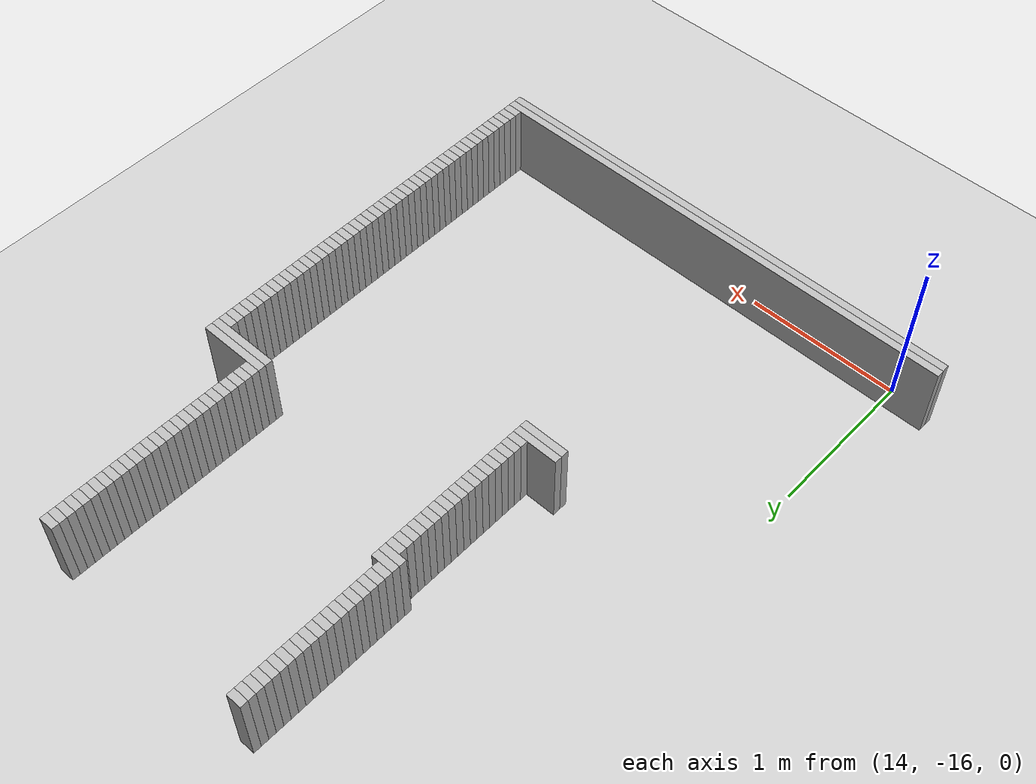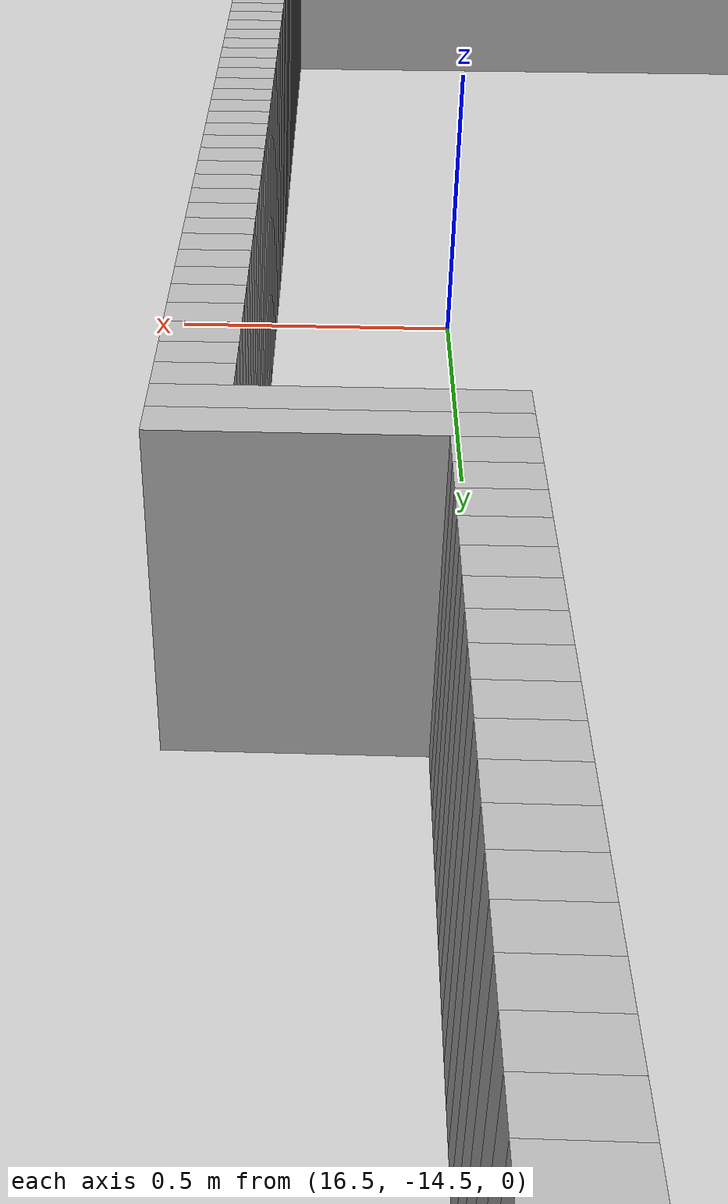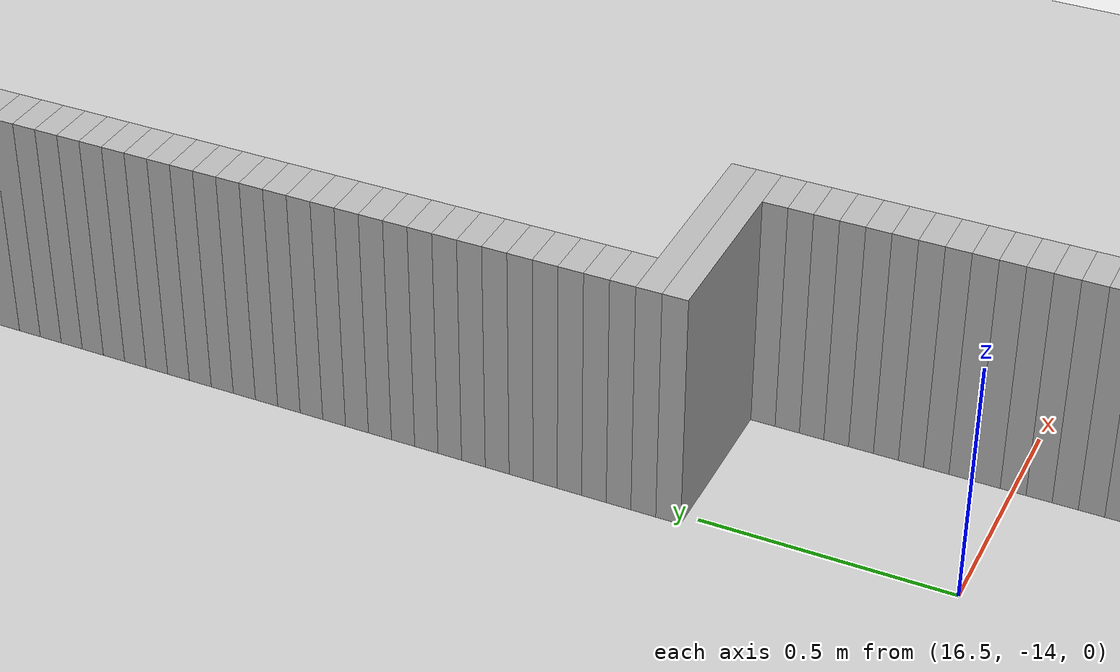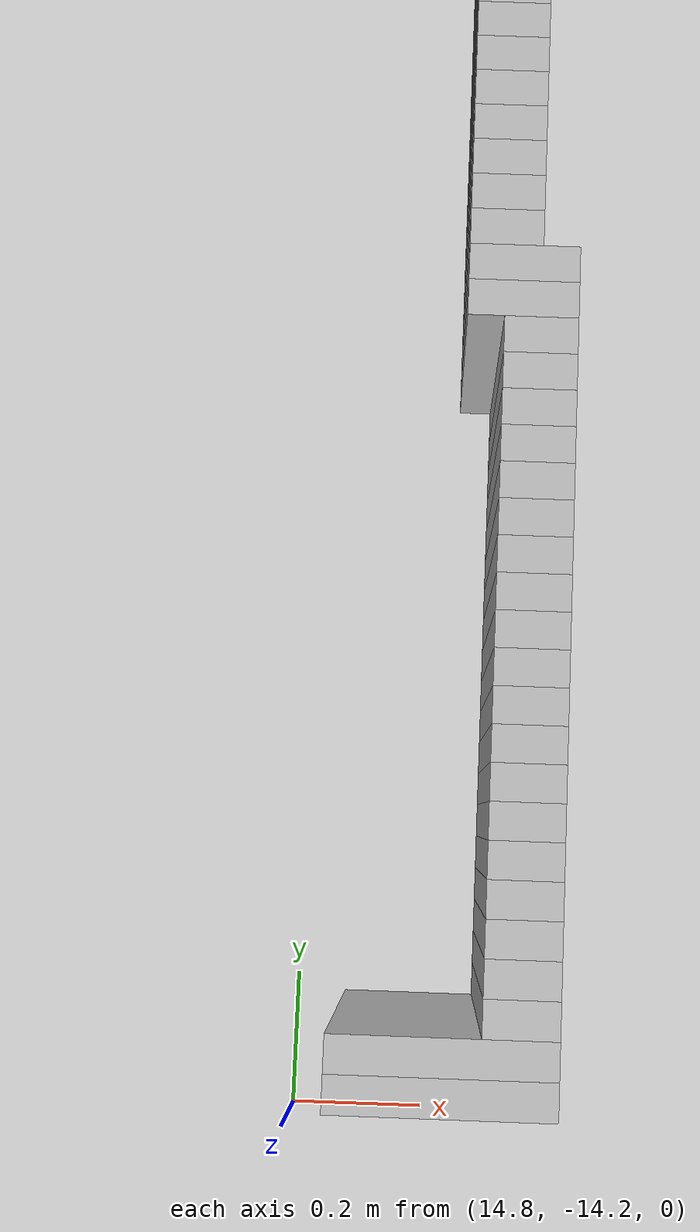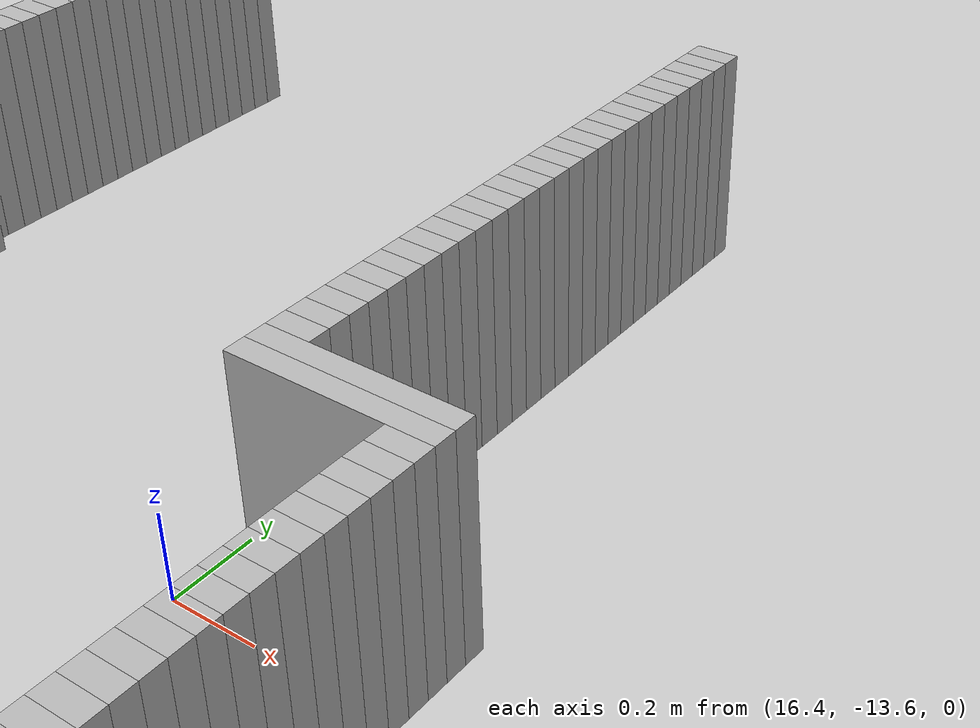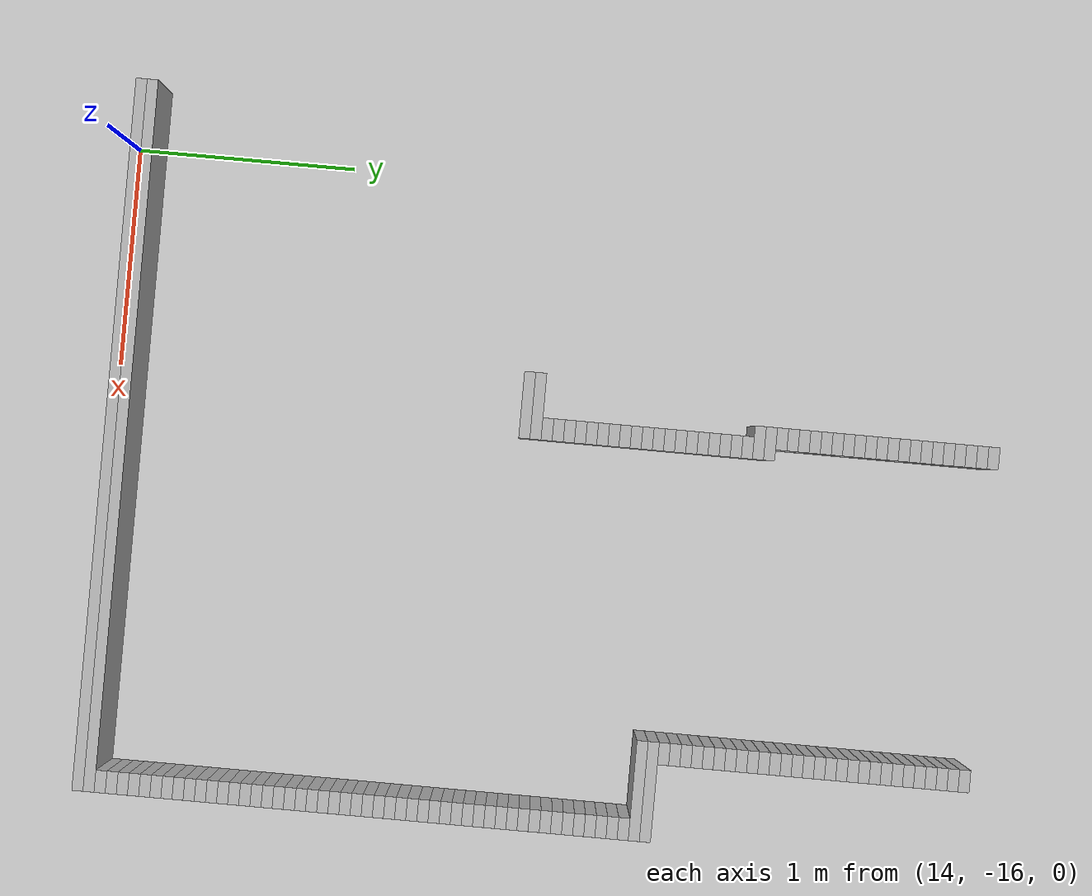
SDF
<sdf version="1.6">
 <world name="optimized_map_world">
  <include><uri>model://sun</uri></include>
  <include><uri>model://ground_plane</uri></include>
  <model name="obstacle_992">
   <static>true</static>
   <link name="link">
    <collision name="collision"><geometry><box><size>0.1 0.05 0.5</size></box></geometry></collision>
    <visual name="visual"><geometry><box><size>0.1 0.05 0.5</size></box></geometry></visual>
   </link>
   <pose>15.075000000000003 -12.0 0.25 0 0 0</pose>
  </model>
  <model name="obstacle_993">
   <static>true</static>
   <link name="link">
    <collision name="collision"><geometry><box><size>0.1 0.05 0.5</size></box></geometry></collision>
    <visual name="visual"><geometry><box><size>0.1 0.05 0.5</size></box></geometry></visual>
   </link>
   <pose>16.525000000000002 -12.0 0.25 0 0 0</pose>
  </model>
  <model name="obstacle_996">
   <static>true</static>
   <link name="link">
    <collision name="collision"><geometry><box><size>0.1 0.05 0.5</size></box></geometry></collision>
    <visual name="visual"><geometry><box><size>0.1 0.05 0.5</size></box></geometry></visual>
   </link>
   <pose>15.075000000000003 -12.05 0.25 0 0 0</pose>
  </model>
  <model name="obstacle_997">
   <static>true</static>
   <link name="link">
    <collision name="collision"><geometry><box><size>0.1 0.05 0.5</size></box></geometry></collision>
    <visual name="visual"><geometry><box><size>0.1 0.05 0.5</size></box></geometry></visual>
   </link>
   <pose>16.525000000000002 -12.05 0.25 0 0 0</pose>
  </model>
  <model name="obstacle_1000">
   <static>true</static>
   <link name="link">
    <collision name="collision"><geometry><box><size>0.1 0.05 0.5</size></box></geometry></collision>
    <visual name="visual"><geometry><box><size>0.1 0.05 0.5</size></box></geometry></visual>
   </link>
   <pose>15.075000000000003 -12.1 0.25 0 0 0</pose>
  </model>
  <model name="obstacle_1001">
   <static>true</static>
   <link name="link">
    <collision name="collision"><geometry><box><size>0.1 0.05 0.5</size></box></geometry></collision>
    <visual name="visual"><geometry><box><size>0.1 0.05 0.5</size></box></geometry></visual>
   </link>
   <pose>16.525000000000002 -12.1 0.25 0 0 0</pose>
  </model>
  <model name="obstacle_1004">
   <static>true</static>
   <link name="link">
    <collision name="collision"><geometry><box><size>0.1 0.05 0.5</size></box></geometry></collision>
    <visual name="visual"><geometry><box><size>0.1 0.05 0.5</size></box></geometry></visual>
   </link>
   <pose>15.075000000000003 -12.15 0.25 0 0 0</pose>
  </model>
  <model name="obstacle_1005">
   <static>true</static>
   <link name="link">
    <collision name="collision"><geometry><box><size>0.1 0.05 0.5</size></box></geometry></collision>
    <visual name="visual"><geometry><box><size>0.1 0.05 0.5</size></box></geometry></visual>
   </link>
   <pose>16.525000000000002 -12.15 0.25 0 0 0</pose>
  </model>
  <model name="obstacle_1008">
   <static>true</static>
   <link name="link">
    <collision name="collision"><geometry><box><size>0.1 0.05 0.5</size></box></geometry></collision>
    <visual name="visual"><geometry><box><size>0.1 0.05 0.5</size></box></geometry></visual>
   </link>
   <pose>15.075000000000003 -12.200000000000001 0.25 0 0 0</pose>
  </model>
  <model name="obstacle_1009">
   <static>true</static>
   <link name="link">
    <collision name="collision"><geometry><box><size>0.1 0.05 0.5</size></box></geometry></collision>
    <visual name="visual"><geometry><box><size>0.1 0.05 0.5</size></box></geometry></visual>
   </link>
   <pose>16.525000000000002 -12.200000000000001 0.25 0 0 0</pose>
  </model>
  <model name="obstacle_1012">
   <static>true</static>
   <link name="link">
    <collision name="collision"><geometry><box><size>0.1 0.05 0.5</size></box></geometry></collision>
    <visual name="visual"><geometry><box><size>0.1 0.05 0.5</size></box></geometry></visual>
   </link>
   <pose>15.075000000000003 -12.25 0.25 0 0 0</pose>
  </model>
  <model name="obstacle_1013">
   <static>true</static>
   <link name="link">
    <collision name="collision"><geometry><box><size>0.1 0.05 0.5</size></box></geometry></collision>
    <visual name="visual"><geometry><box><size>0.1 0.05 0.5</size></box></geometry></visual>
   </link>
   <pose>16.525000000000002 -12.25 0.25 0 0 0</pose>
  </model>
  <model name="obstacle_1016">
   <static>true</static>
   <link name="link">
    <collision name="collision"><geometry><box><size>0.1 0.05 0.5</size></box></geometry></collision>
    <visual name="visual"><geometry><box><size>0.1 0.05 0.5</size></box></geometry></visual>
   </link>
   <pose>15.075000000000003 -12.3 0.25 0 0 0</pose>
  </model>
  <model name="obstacle_1017">
   <static>true</static>
   <link name="link">
    <collision name="collision"><geometry><box><size>0.1 0.05 0.5</size></box></geometry></collision>
    <visual name="visual"><geometry><box><size>0.1 0.05 0.5</size></box></geometry></visual>
   </link>
   <pose>16.525000000000002 -12.3 0.25 0 0 0</pose>
  </model>
  <model name="obstacle_1020">
   <static>true</static>
   <link name="link">
    <collision name="collision"><geometry><box><size>0.1 0.05 0.5</size></box></geometry></collision>
    <visual name="visual"><geometry><box><size>0.1 0.05 0.5</size></box></geometry></visual>
   </link>
   <pose>15.075000000000003 -12.350000000000001 0.25 0 0 0</pose>
  </model>
  <model name="obstacle_1021">
   <static>true</static>
   <link name="link">
    <collision name="collision"><geometry><box><size>0.1 0.05 0.5</size></box></geometry></collision>
    <visual name="visual"><geometry><box><size>0.1 0.05 0.5</size></box></geometry></visual>
   </link>
   <pose>16.525000000000002 -12.350000000000001 0.25 0 0 0</pose>
  </model>
  <model name="obstacle_1024">
   <static>true</static>
   <link name="link">
    <collision name="collision"><geometry><box><size>0.1 0.05 0.5</size></box></geometry></collision>
    <visual name="visual"><geometry><box><size>0.1 0.05 0.5</size></box></geometry></visual>
   </link>
   <pose>15.075000000000003 -12.4 0.25 0 0 0</pose>
  </model>
  <model name="obstacle_1025">
   <static>true</static>
   <link name="link">
    <collision name="collision"><geometry><box><size>0.1 0.05 0.5</size></box></geometry></collision>
    <visual name="visual"><geometry><box><size>0.1 0.05 0.5</size></box></geometry></visual>
   </link>
   <pose>16.525000000000002 -12.4 0.25 0 0 0</pose>
  </model>
  <model name="obstacle_1028">
   <static>true</static>
   <link name="link">
    <collision name="collision"><geometry><box><size>0.1 0.05 0.5</size></box></geometry></collision>
    <visual name="visual"><geometry><box><size>0.1 0.05 0.5</size></box></geometry></visual>
   </link>
   <pose>15.075000000000003 -12.45 0.25 0 0 0</pose>
  </model>
  <model name="obstacle_1029">
   <static>true</static>
   <link name="link">
    <collision name="collision"><geometry><box><size>0.1 0.05 0.5</size></box></geometry></collision>
    <visual name="visual"><geometry><box><size>0.1 0.05 0.5</size></box></geometry></visual>
   </link>
   <pose>16.525000000000002 -12.45 0.25 0 0 0</pose>
  </model>
  <model name="obstacle_1032">
   <static>true</static>
   <link name="link">
    <collision name="collision"><geometry><box><size>0.1 0.05 0.5</size></box></geometry></collision>
    <visual name="visual"><geometry><box><size>0.1 0.05 0.5</size></box></geometry></visual>
   </link>
   <pose>15.075000000000003 -12.5 0.25 0 0 0</pose>
  </model>
  <model name="obstacle_1033">
   <static>true</static>
   <link name="link">
    <collision name="collision"><geometry><box><size>0.1 0.05 0.5</size></box></geometry></collision>
    <visual name="visual"><geometry><box><size>0.1 0.05 0.5</size></box></geometry></visual>
   </link>
   <pose>16.525000000000002 -12.5 0.25 0 0 0</pose>
  </model>
  <model name="obstacle_1036">
   <static>true</static>
   <link name="link">
    <collision name="collision"><geometry><box><size>0.1 0.05 0.5</size></box></geometry></collision>
    <visual name="visual"><geometry><box><size>0.1 0.05 0.5</size></box></geometry></visual>
   </link>
   <pose>15.075000000000003 -12.55 0.25 0 0 0</pose>
  </model>
  <model name="obstacle_1037">
   <static>true</static>
   <link name="link">
    <collision name="collision"><geometry><box><size>0.1 0.05 0.5</size></box></geometry></collision>
    <visual name="visual"><geometry><box><size>0.1 0.05 0.5</size></box></geometry></visual>
   </link>
   <pose>16.525000000000002 -12.55 0.25 0 0 0</pose>
  </model>
  <model name="obstacle_1040">
   <static>true</static>
   <link name="link">
    <collision name="collision"><geometry><box><size>0.1 0.05 0.5</size></box></geometry></collision>
    <visual name="visual"><geometry><box><size>0.1 0.05 0.5</size></box></geometry></visual>
   </link>
   <pose>15.075000000000003 -12.600000000000001 0.25 0 0 0</pose>
  </model>
  <model name="obstacle_1041">
   <static>true</static>
   <link name="link">
    <collision name="collision"><geometry><box><size>0.1 0.05 0.5</size></box></geometry></collision>
    <visual name="visual"><geometry><box><size>0.1 0.05 0.5</size></box></geometry></visual>
   </link>
   <pose>16.525000000000002 -12.600000000000001 0.25 0 0 0</pose>
  </model>
  <model name="obstacle_1044">
   <static>true</static>
   <link name="link">
    <collision name="collision"><geometry><box><size>0.1 0.05 0.5</size></box></geometry></collision>
    <visual name="visual"><geometry><box><size>0.1 0.05 0.5</size></box></geometry></visual>
   </link>
   <pose>15.075000000000003 -12.65 0.25 0 0 0</pose>
  </model>
  <model name="obstacle_1045">
   <static>true</static>
   <link name="link">
    <collision name="collision"><geometry><box><size>0.1 0.05 0.5</size></box></geometry></collision>
    <visual name="visual"><geometry><box><size>0.1 0.05 0.5</size></box></geometry></visual>
   </link>
   <pose>16.525000000000002 -12.65 0.25 0 0 0</pose>
  </model>
  <model name="obstacle_1048">
   <static>true</static>
   <link name="link">
    <collision name="collision"><geometry><box><size>0.1 0.05 0.5</size></box></geometry></collision>
    <visual name="visual"><geometry><box><size>0.1 0.05 0.5</size></box></geometry></visual>
   </link>
   <pose>15.075000000000003 -12.7 0.25 0 0 0</pose>
  </model>
  <model name="obstacle_1049">
   <static>true</static>
   <link name="link">
    <collision name="collision"><geometry><box><size>0.1 0.05 0.5</size></box></geometry></collision>
    <visual name="visual"><geometry><box><size>0.1 0.05 0.5</size></box></geometry></visual>
   </link>
   <pose>16.525000000000002 -12.7 0.25 0 0 0</pose>
  </model>
  <model name="obstacle_1052">
   <static>true</static>
   <link name="link">
    <collision name="collision"><geometry><box><size>0.1 0.05 0.5</size></box></geometry></collision>
    <visual name="visual"><geometry><box><size>0.1 0.05 0.5</size></box></geometry></visual>
   </link>
   <pose>15.075000000000003 -12.75 0.25 0 0 0</pose>
  </model>
  <model name="obstacle_1053">
   <static>true</static>
   <link name="link">
    <collision name="collision"><geometry><box><size>0.1 0.05 0.5</size></box></geometry></collision>
    <visual name="visual"><geometry><box><size>0.1 0.05 0.5</size></box></geometry></visual>
   </link>
   <pose>16.525000000000002 -12.75 0.25 0 0 0</pose>
  </model>
  <model name="obstacle_1056">
   <static>true</static>
   <link name="link">
    <collision name="collision"><geometry><box><size>0.1 0.05 0.5</size></box></geometry></collision>
    <visual name="visual"><geometry><box><size>0.1 0.05 0.5</size></box></geometry></visual>
   </link>
   <pose>15.075000000000003 -12.8 0.25 0 0 0</pose>
  </model>
  <model name="obstacle_1057">
   <static>true</static>
   <link name="link">
    <collision name="collision"><geometry><box><size>0.1 0.05 0.5</size></box></geometry></collision>
    <visual name="visual"><geometry><box><size>0.1 0.05 0.5</size></box></geometry></visual>
   </link>
   <pose>16.525000000000002 -12.8 0.25 0 0 0</pose>
  </model>
  <model name="obstacle_1060">
   <static>true</static>
   <link name="link">
    <collision name="collision"><geometry><box><size>0.1 0.05 0.5</size></box></geometry></collision>
    <visual name="visual"><geometry><box><size>0.1 0.05 0.5</size></box></geometry></visual>
   </link>
   <pose>15.075000000000003 -12.850000000000001 0.25 0 0 0</pose>
  </model>
  <model name="obstacle_1061">
   <static>true</static>
   <link name="link">
    <collision name="collision"><geometry><box><size>0.1 0.05 0.5</size></box></geometry></collision>
    <visual name="visual"><geometry><box><size>0.1 0.05 0.5</size></box></geometry></visual>
   </link>
   <pose>16.525000000000002 -12.850000000000001 0.25 0 0 0</pose>
  </model>
  <model name="obstacle_1064">
   <static>true</static>
   <link name="link">
    <collision name="collision"><geometry><box><size>0.1 0.05 0.5</size></box></geometry></collision>
    <visual name="visual"><geometry><box><size>0.1 0.05 0.5</size></box></geometry></visual>
   </link>
   <pose>15.075000000000003 -12.9 0.25 0 0 0</pose>
  </model>
  <model name="obstacle_1065">
   <static>true</static>
   <link name="link">
    <collision name="collision"><geometry><box><size>0.1 0.05 0.5</size></box></geometry></collision>
    <visual name="visual"><geometry><box><size>0.1 0.05 0.5</size></box></geometry></visual>
   </link>
   <pose>16.525000000000002 -12.9 0.25 0 0 0</pose>
  </model>
  <model name="obstacle_1068">
   <static>true</static>
   <link name="link">
    <collision name="collision"><geometry><box><size>0.1 0.05 0.5</size></box></geometry></collision>
    <visual name="visual"><geometry><box><size>0.1 0.05 0.5</size></box></geometry></visual>
   </link>
   <pose>15.075000000000003 -12.95 0.25 0 0 0</pose>
  </model>
  <model name="obstacle_1069">
   <static>true</static>
   <link name="link">
    <collision name="collision"><geometry><box><size>0.1 0.05 0.5</size></box></geometry></collision>
    <visual name="visual"><geometry><box><size>0.1 0.05 0.5</size></box></geometry></visual>
   </link>
   <pose>16.525000000000002 -12.95 0.25 0 0 0</pose>
  </model>
  <model name="obstacle_1072">
   <static>true</static>
   <link name="link">
    <collision name="collision">
     <geometry><box><size>0.15000000000000002 0.05 0.5</size></box></geometry>
    </collision>
    <visual name="visual"><geometry><box><size>0.15000000000000002 0.05 0.5</size></box></geometry></visual>
   </link>
   <pose>15.100000000000001 -13.0 0.25 0 0 0</pose>
  </model>
  <model name="obstacle_1073">
   <static>true</static>
   <link name="link">
    <collision name="collision"><geometry><box><size>0.1 0.05 0.5</size></box></geometry></collision>
    <visual name="visual"><geometry><box><size>0.1 0.05 0.5</size></box></geometry></visual>
   </link>
   <pose>16.525000000000002 -13.0 0.25 0 0 0</pose>
  </model>
  <model name="obstacle_1076">
   <static>true</static>
   <link name="link">
    <collision name="collision">
     <geometry><box><size>0.15000000000000002 0.05 0.5</size></box></geometry>
    </collision>
    <visual name="visual"><geometry><box><size>0.15000000000000002 0.05 0.5</size></box></geometry></visual>
   </link>
   <pose>15.100000000000001 -13.05 0.25 0 0 0</pose>
  </model>
  <model name="obstacle_1077">
   <static>true</static>
   <link name="link">
    <collision name="collision"><geometry><box><size>0.1 0.05 0.5</size></box></geometry></collision>
    <visual name="visual"><geometry><box><size>0.1 0.05 0.5</size></box></geometry></visual>
   </link>
   <pose>16.525000000000002 -13.05 0.25 0 0 0</pose>
  </model>
  <model name="obstacle_1080">
   <static>true</static>
   <link name="link">
    <collision name="collision"><geometry><box><size>0.1 0.05 0.5</size></box></geometry></collision>
    <visual name="visual"><geometry><box><size>0.1 0.05 0.5</size></box></geometry></visual>
   </link>
   <pose>15.125000000000004 -13.100000000000001 0.25 0 0 0</pose>
  </model>
  <model name="obstacle_1081">
   <static>true</static>
   <link name="link">
    <collision name="collision"><geometry><box><size>0.1 0.05 0.5</size></box></geometry></collision>
    <visual name="visual"><geometry><box><size>0.1 0.05 0.5</size></box></geometry></visual>
   </link>
   <pose>16.525000000000002 -13.100000000000001 0.25 0 0 0</pose>
  </model>
  <model name="obstacle_1084">
   <static>true</static>
   <link name="link">
    <collision name="collision"><geometry><box><size>0.1 0.05 0.5</size></box></geometry></collision>
    <visual name="visual"><geometry><box><size>0.1 0.05 0.5</size></box></geometry></visual>
   </link>
   <pose>15.125000000000004 -13.15 0.25 0 0 0</pose>
  </model>
  <model name="obstacle_1085">
   <static>true</static>
   <link name="link">
    <collision name="collision"><geometry><box><size>0.1 0.05 0.5</size></box></geometry></collision>
    <visual name="visual"><geometry><box><size>0.1 0.05 0.5</size></box></geometry></visual>
   </link>
   <pose>16.525000000000002 -13.15 0.25 0 0 0</pose>
  </model>
  <model name="obstacle_1089">
   <static>true</static>
   <link name="link">
    <collision name="collision"><geometry><box><size>0.1 0.05 0.5</size></box></geometry></collision>
    <visual name="visual"><geometry><box><size>0.1 0.05 0.5</size></box></geometry></visual>
   </link>
   <pose>15.125000000000004 -13.2 0.25 0 0 0</pose>
  </model>
  <model name="obstacle_1090">
   <static>true</static>
   <link name="link">
    <collision name="collision"><geometry><box><size>0.1 0.05 0.5</size></box></geometry></collision>
    <visual name="visual"><geometry><box><size>0.1 0.05 0.5</size></box></geometry></visual>
   </link>
   <pose>16.525000000000002 -13.2 0.25 0 0 0</pose>
  </model>
  <model name="obstacle_1094">
   <static>true</static>
   <link name="link">
    <collision name="collision"><geometry><box><size>0.1 0.05 0.5</size></box></geometry></collision>
    <visual name="visual"><geometry><box><size>0.1 0.05 0.5</size></box></geometry></visual>
   </link>
   <pose>15.125000000000004 -13.25 0.25 0 0 0</pose>
  </model>
  <model name="obstacle_1095">
   <static>true</static>
   <link name="link">
    <collision name="collision"><geometry><box><size>0.1 0.05 0.5</size></box></geometry></collision>
    <visual name="visual"><geometry><box><size>0.1 0.05 0.5</size></box></geometry></visual>
   </link>
   <pose>16.525000000000002 -13.25 0.25 0 0 0</pose>
  </model>
  <model name="obstacle_1100">
   <static>true</static>
   <link name="link">
    <collision name="collision"><geometry><box><size>0.1 0.05 0.5</size></box></geometry></collision>
    <visual name="visual"><geometry><box><size>0.1 0.05 0.5</size></box></geometry></visual>
   </link>
   <pose>15.125000000000004 -13.3 0.25 0 0 0</pose>
  </model>
  <model name="obstacle_1101">
   <static>true</static>
   <link name="link">
    <collision name="collision"><geometry><box><size>0.1 0.05 0.5</size></box></geometry></collision>
    <visual name="visual"><geometry><box><size>0.1 0.05 0.5</size></box></geometry></visual>
   </link>
   <pose>16.525000000000002 -13.3 0.25 0 0 0</pose>
  </model>
  <model name="obstacle_1106">
   <static>true</static>
   <link name="link">
    <collision name="collision"><geometry><box><size>0.1 0.05 0.5</size></box></geometry></collision>
    <visual name="visual"><geometry><box><size>0.1 0.05 0.5</size></box></geometry></visual>
   </link>
   <pose>15.125000000000004 -13.350000000000001 0.25 0 0 0</pose>
  </model>
  <model name="obstacle_1107">
   <static>true</static>
   <link name="link">
    <collision name="collision"><geometry><box><size>0.1 0.05 0.5</size></box></geometry></collision>
    <visual name="visual"><geometry><box><size>0.1 0.05 0.5</size></box></geometry></visual>
   </link>
   <pose>16.525000000000002 -13.350000000000001 0.25 0 0 0</pose>
  </model>
  <model name="obstacle_1112">
   <static>true</static>
   <link name="link">
    <collision name="collision"><geometry><box><size>0.1 0.05 0.5</size></box></geometry></collision>
    <visual name="visual"><geometry><box><size>0.1 0.05 0.5</size></box></geometry></visual>
   </link>
   <pose>15.125000000000004 -13.4 0.25 0 0 0</pose>
  </model>
  <model name="obstacle_1113">
   <static>true</static>
   <link name="link">
    <collision name="collision"><geometry><box><size>0.45 0.05 0.5</size></box></geometry></collision>
    <visual name="visual"><geometry><box><size>0.45 0.05 0.5</size></box></geometry></visual>
   </link>
   <pose>16.7 -13.4 0.25 0 0 0</pose>
  </model>
  <model name="obstacle_1118">
   <static>true</static>
   <link name="link">
    <collision name="collision"><geometry><box><size>0.1 0.05 0.5</size></box></geometry></collision>
    <visual name="visual"><geometry><box><size>0.1 0.05 0.5</size></box></geometry></visual>
   </link>
   <pose>15.125000000000004 -13.45 0.25 0 0 0</pose>
  </model>
  <model name="obstacle_1119">
   <static>true</static>
   <link name="link">
    <collision name="collision"><geometry><box><size>0.45 0.05 0.5</size></box></geometry></collision>
    <visual name="visual"><geometry><box><size>0.45 0.05 0.5</size></box></geometry></visual>
   </link>
   <pose>16.7 -13.45 0.25 0 0 0</pose>
  </model>
  <model name="obstacle_1124">
   <static>true</static>
   <link name="link">
    <collision name="collision"><geometry><box><size>0.1 0.05 0.5</size></box></geometry></collision>
    <visual name="visual"><geometry><box><size>0.1 0.05 0.5</size></box></geometry></visual>
   </link>
   <pose>15.125000000000004 -13.5 0.25 0 0 0</pose>
  </model>
  <model name="obstacle_1125">
   <static>true</static>
   <link name="link">
    <collision name="collision"><geometry><box><size>0.1 0.05 0.5</size></box></geometry></collision>
    <visual name="visual"><geometry><box><size>0.1 0.05 0.5</size></box></geometry></visual>
   </link>
   <pose>16.875000000000004 -13.5 0.25 0 0 0</pose>
  </model>
  <model name="obstacle_1130">
   <static>true</static>
   <link name="link">
    <collision name="collision"><geometry><box><size>0.1 0.05 0.5</size></box></geometry></collision>
    <visual name="visual"><geometry><box><size>0.1 0.05 0.5</size></box></geometry></visual>
   </link>
   <pose>15.125000000000004 -13.55 0.25 0 0 0</pose>
  </model>
  <model name="obstacle_1131">
   <static>true</static>
   <link name="link">
    <collision name="collision"><geometry><box><size>0.1 0.05 0.5</size></box></geometry></collision>
    <visual name="visual"><geometry><box><size>0.1 0.05 0.5</size></box></geometry></visual>
   </link>
   <pose>16.875000000000004 -13.55 0.25 0 0 0</pose>
  </model>
  <model name="obstacle_1136">
   <static>true</static>
   <link name="link">
    <collision name="collision"><geometry><box><size>0.1 0.05 0.5</size></box></geometry></collision>
    <visual name="visual"><geometry><box><size>0.1 0.05 0.5</size></box></geometry></visual>
   </link>
   <pose>15.125000000000004 -13.600000000000001 0.25 0 0 0</pose>
  </model>
  <model name="obstacle_1137">
   <static>true</static>
   <link name="link">
    <collision name="collision"><geometry><box><size>0.1 0.05 0.5</size></box></geometry></collision>
    <visual name="visual"><geometry><box><size>0.1 0.05 0.5</size></box></geometry></visual>
   </link>
   <pose>16.875000000000004 -13.600000000000001 0.25 0 0 0</pose>
  </model>
  <model name="obstacle_1141">
   <static>true</static>
   <link name="link">
    <collision name="collision"><geometry><box><size>0.1 0.05 0.5</size></box></geometry></collision>
    <visual name="visual"><geometry><box><size>0.1 0.05 0.5</size></box></geometry></visual>
   </link>
   <pose>15.125000000000004 -13.65 0.25 0 0 0</pose>
  </model>
  <model name="obstacle_1142">
   <static>true</static>
   <link name="link">
    <collision name="collision"><geometry><box><size>0.1 0.05 0.5</size></box></geometry></collision>
    <visual name="visual"><geometry><box><size>0.1 0.05 0.5</size></box></geometry></visual>
   </link>
   <pose>16.875000000000004 -13.65 0.25 0 0 0</pose>
  </model>
  <model name="obstacle_1146">
   <static>true</static>
   <link name="link">
    <collision name="collision"><geometry><box><size>0.1 0.05 0.5</size></box></geometry></collision>
    <visual name="visual"><geometry><box><size>0.1 0.05 0.5</size></box></geometry></visual>
   </link>
   <pose>15.125000000000004 -13.7 0.25 0 0 0</pose>
  </model>
  <model name="obstacle_1147">
   <static>true</static>
   <link name="link">
    <collision name="collision"><geometry><box><size>0.1 0.05 0.5</size></box></geometry></collision>
    <visual name="visual"><geometry><box><size>0.1 0.05 0.5</size></box></geometry></visual>
   </link>
   <pose>16.875000000000004 -13.7 0.25 0 0 0</pose>
  </model>
  <model name="obstacle_1150">
   <static>true</static>
   <link name="link">
    <collision name="collision"><geometry><box><size>0.1 0.05 0.5</size></box></geometry></collision>
    <visual name="visual"><geometry><box><size>0.1 0.05 0.5</size></box></geometry></visual>
   </link>
   <pose>15.125000000000004 -13.75 0.25 0 0 0</pose>
  </model>
  <model name="obstacle_1151">
   <static>true</static>
   <link name="link">
    <collision name="collision"><geometry><box><size>0.1 0.05 0.5</size></box></geometry></collision>
    <visual name="visual"><geometry><box><size>0.1 0.05 0.5</size></box></geometry></visual>
   </link>
   <pose>16.875000000000004 -13.75 0.25 0 0 0</pose>
  </model>
  <model name="obstacle_1154">
   <static>true</static>
   <link name="link">
    <collision name="collision"><geometry><box><size>0.1 0.05 0.5</size></box></geometry></collision>
    <visual name="visual"><geometry><box><size>0.1 0.05 0.5</size></box></geometry></visual>
   </link>
   <pose>15.125000000000004 -13.8 0.25 0 0 0</pose>
  </model>
  <model name="obstacle_1155">
   <static>true</static>
   <link name="link">
    <collision name="collision"><geometry><box><size>0.1 0.05 0.5</size></box></geometry></collision>
    <visual name="visual"><geometry><box><size>0.1 0.05 0.5</size></box></geometry></visual>
   </link>
   <pose>16.875000000000004 -13.8 0.25 0 0 0</pose>
  </model>
  <model name="obstacle_1158">
   <static>true</static>
   <link name="link">
    <collision name="collision"><geometry><box><size>0.1 0.05 0.5</size></box></geometry></collision>
    <visual name="visual"><geometry><box><size>0.1 0.05 0.5</size></box></geometry></visual>
   </link>
   <pose>15.125000000000004 -13.850000000000001 0.25 0 0 0</pose>
  </model>
  <model name="obstacle_1159">
   <static>true</static>
   <link name="link">
    <collision name="collision"><geometry><box><size>0.1 0.05 0.5</size></box></geometry></collision>
    <visual name="visual"><geometry><box><size>0.1 0.05 0.5</size></box></geometry></visual>
   </link>
   <pose>16.875000000000004 -13.850000000000001 0.25 0 0 0</pose>
  </model>
  <model name="obstacle_1162">
   <static>true</static>
   <link name="link">
    <collision name="collision"><geometry><box><size>0.1 0.05 0.5</size></box></geometry></collision>
    <visual name="visual"><geometry><box><size>0.1 0.05 0.5</size></box></geometry></visual>
   </link>
   <pose>15.125000000000004 -13.9 0.25 0 0 0</pose>
  </model>
  <model name="obstacle_1163">
   <static>true</static>
   <link name="link">
    <collision name="collision"><geometry><box><size>0.1 0.05 0.5</size></box></geometry></collision>
    <visual name="visual"><geometry><box><size>0.1 0.05 0.5</size></box></geometry></visual>
   </link>
   <pose>16.875000000000004 -13.9 0.25 0 0 0</pose>
  </model>
  <model name="obstacle_1166">
   <static>true</static>
   <link name="link">
    <collision name="collision"><geometry><box><size>0.1 0.05 0.5</size></box></geometry></collision>
    <visual name="visual"><geometry><box><size>0.1 0.05 0.5</size></box></geometry></visual>
   </link>
   <pose>15.125000000000004 -13.95 0.25 0 0 0</pose>
  </model>
  <model name="obstacle_1167">
   <static>true</static>
   <link name="link">
    <collision name="collision"><geometry><box><size>0.1 0.05 0.5</size></box></geometry></collision>
    <visual name="visual"><geometry><box><size>0.1 0.05 0.5</size></box></geometry></visual>
   </link>
   <pose>16.875000000000004 -13.95 0.25 0 0 0</pose>
  </model>
  <model name="obstacle_1170">
   <static>true</static>
   <link name="link">
    <collision name="collision"><geometry><box><size>0.1 0.05 0.5</size></box></geometry></collision>
    <visual name="visual"><geometry><box><size>0.1 0.05 0.5</size></box></geometry></visual>
   </link>
   <pose>15.125000000000004 -14.0 0.25 0 0 0</pose>
  </model>
  <model name="obstacle_1171">
   <static>true</static>
   <link name="link">
    <collision name="collision"><geometry><box><size>0.1 0.05 0.5</size></box></geometry></collision>
    <visual name="visual"><geometry><box><size>0.1 0.05 0.5</size></box></geometry></visual>
   </link>
   <pose>16.875000000000004 -14.0 0.25 0 0 0</pose>
  </model>
  <model name="obstacle_1173">
   <static>true</static>
   <link name="link">
    <collision name="collision">
     <geometry><box><size>0.30000000000000004 0.05 0.5</size></box></geometry>
    </collision>
    <visual name="visual"><geometry><box><size>0.30000000000000004 0.05 0.5</size></box></geometry></visual>
   </link>
   <pose>15.025000000000002 -14.05 0.25 0 0 0</pose>
  </model>
  <model name="obstacle_1174">
   <static>true</static>
   <link name="link">
    <collision name="collision"><geometry><box><size>0.1 0.05 0.5</size></box></geometry></collision>
    <visual name="visual"><geometry><box><size>0.1 0.05 0.5</size></box></geometry></visual>
   </link>
   <pose>16.875000000000004 -14.05 0.25 0 0 0</pose>
  </model>
  <model name="obstacle_1176">
   <static>true</static>
   <link name="link">
    <collision name="collision">
     <geometry><box><size>0.30000000000000004 0.05 0.5</size></box></geometry>
    </collision>
    <visual name="visual"><geometry><box><size>0.30000000000000004 0.05 0.5</size></box></geometry></visual>
   </link>
   <pose>15.025000000000002 -14.100000000000001 0.25 0 0 0</pose>
  </model>
  <model name="obstacle_1177">
   <static>true</static>
   <link name="link">
    <collision name="collision"><geometry><box><size>0.1 0.05 0.5</size></box></geometry></collision>
    <visual name="visual"><geometry><box><size>0.1 0.05 0.5</size></box></geometry></visual>
   </link>
   <pose>16.875000000000004 -14.100000000000001 0.25 0 0 0</pose>
  </model>
  <model name="obstacle_1179">
   <static>true</static>
   <link name="link">
    <collision name="collision"><geometry><box><size>0.1 0.05 0.5</size></box></geometry></collision>
    <visual name="visual"><geometry><box><size>0.1 0.05 0.5</size></box></geometry></visual>
   </link>
   <pose>16.875000000000004 -14.15 0.25 0 0 0</pose>
  </model>
  <model name="obstacle_1181">
   <static>true</static>
   <link name="link">
    <collision name="collision"><geometry><box><size>0.1 0.05 0.5</size></box></geometry></collision>
    <visual name="visual"><geometry><box><size>0.1 0.05 0.5</size></box></geometry></visual>
   </link>
   <pose>16.875000000000004 -14.2 0.25 0 0 0</pose>
  </model>
  <model name="obstacle_1183">
   <static>true</static>
   <link name="link">
    <collision name="collision"><geometry><box><size>0.1 0.05 0.5</size></box></geometry></collision>
    <visual name="visual"><geometry><box><size>0.1 0.05 0.5</size></box></geometry></visual>
   </link>
   <pose>16.875000000000004 -14.25 0.25 0 0 0</pose>
  </model>
  <model name="obstacle_1185">
   <static>true</static>
   <link name="link">
    <collision name="collision"><geometry><box><size>0.1 0.05 0.5</size></box></geometry></collision>
    <visual name="visual"><geometry><box><size>0.1 0.05 0.5</size></box></geometry></visual>
   </link>
   <pose>16.875000000000004 -14.3 0.25 0 0 0</pose>
  </model>
  <model name="obstacle_1187">
   <static>true</static>
   <link name="link">
    <collision name="collision"><geometry><box><size>0.1 0.05 0.5</size></box></geometry></collision>
    <visual name="visual"><geometry><box><size>0.1 0.05 0.5</size></box></geometry></visual>
   </link>
   <pose>16.875000000000004 -14.350000000000001 0.25 0 0 0</pose>
  </model>
  <model name="obstacle_1189">
   <static>true</static>
   <link name="link">
    <collision name="collision"><geometry><box><size>0.1 0.05 0.5</size></box></geometry></collision>
    <visual name="visual"><geometry><box><size>0.1 0.05 0.5</size></box></geometry></visual>
   </link>
   <pose>16.875000000000004 -14.4 0.25 0 0 0</pose>
  </model>
  <model name="obstacle_1191">
   <static>true</static>
   <link name="link">
    <collision name="collision"><geometry><box><size>0.1 0.05 0.5</size></box></geometry></collision>
    <visual name="visual"><geometry><box><size>0.1 0.05 0.5</size></box></geometry></visual>
   </link>
   <pose>16.875000000000004 -14.45 0.25 0 0 0</pose>
  </model>
  <model name="obstacle_1193">
   <static>true</static>
   <link name="link">
    <collision name="collision"><geometry><box><size>0.1 0.05 0.5</size></box></geometry></collision>
    <visual name="visual"><geometry><box><size>0.1 0.05 0.5</size></box></geometry></visual>
   </link>
   <pose>16.875000000000004 -14.5 0.25 0 0 0</pose>
  </model>
  <model name="obstacle_1195">
   <static>true</static>
   <link name="link">
    <collision name="collision"><geometry><box><size>0.1 0.05 0.5</size></box></geometry></collision>
    <visual name="visual"><geometry><box><size>0.1 0.05 0.5</size></box></geometry></visual>
   </link>
   <pose>16.875000000000004 -14.55 0.25 0 0 0</pose>
  </model>
  <model name="obstacle_1197">
   <static>true</static>
   <link name="link">
    <collision name="collision"><geometry><box><size>0.1 0.05 0.5</size></box></geometry></collision>
    <visual name="visual"><geometry><box><size>0.1 0.05 0.5</size></box></geometry></visual>
   </link>
   <pose>16.875000000000004 -14.600000000000001 0.25 0 0 0</pose>
  </model>
  <model name="obstacle_1199">
   <static>true</static>
   <link name="link">
    <collision name="collision"><geometry><box><size>0.1 0.05 0.5</size></box></geometry></collision>
    <visual name="visual"><geometry><box><size>0.1 0.05 0.5</size></box></geometry></visual>
   </link>
   <pose>16.875000000000004 -14.65 0.25 0 0 0</pose>
  </model>
  <model name="obstacle_1201">
   <static>true</static>
   <link name="link">
    <collision name="collision"><geometry><box><size>0.1 0.05 0.5</size></box></geometry></collision>
    <visual name="visual"><geometry><box><size>0.1 0.05 0.5</size></box></geometry></visual>
   </link>
   <pose>16.875000000000004 -14.7 0.25 0 0 0</pose>
  </model>
  <model name="obstacle_1203">
   <static>true</static>
   <link name="link">
    <collision name="collision"><geometry><box><size>0.1 0.05 0.5</size></box></geometry></collision>
    <visual name="visual"><geometry><box><size>0.1 0.05 0.5</size></box></geometry></visual>
   </link>
   <pose>16.875000000000004 -14.75 0.25 0 0 0</pose>
  </model>
  <model name="obstacle_1205">
   <static>true</static>
   <link name="link">
    <collision name="collision"><geometry><box><size>0.1 0.05 0.5</size></box></geometry></collision>
    <visual name="visual"><geometry><box><size>0.1 0.05 0.5</size></box></geometry></visual>
   </link>
   <pose>16.875000000000004 -14.8 0.25 0 0 0</pose>
  </model>
  <model name="obstacle_1207">
   <static>true</static>
   <link name="link">
    <collision name="collision"><geometry><box><size>0.1 0.05 0.5</size></box></geometry></collision>
    <visual name="visual"><geometry><box><size>0.1 0.05 0.5</size></box></geometry></visual>
   </link>
   <pose>16.875000000000004 -14.850000000000001 0.25 0 0 0</pose>
  </model>
  <model name="obstacle_1209">
   <static>true</static>
   <link name="link">
    <collision name="collision"><geometry><box><size>0.1 0.05 0.5</size></box></geometry></collision>
    <visual name="visual"><geometry><box><size>0.1 0.05 0.5</size></box></geometry></visual>
   </link>
   <pose>16.875000000000004 -14.9 0.25 0 0 0</pose>
  </model>
  <model name="obstacle_1211">
   <static>true</static>
   <link name="link">
    <collision name="collision"><geometry><box><size>0.1 0.05 0.5</size></box></geometry></collision>
    <visual name="visual"><geometry><box><size>0.1 0.05 0.5</size></box></geometry></visual>
   </link>
   <pose>16.875000000000004 -14.95 0.25 0 0 0</pose>
  </model>
  <model name="obstacle_1213">
   <static>true</static>
   <link name="link">
    <collision name="collision"><geometry><box><size>0.1 0.05 0.5</size></box></geometry></collision>
    <visual name="visual"><geometry><box><size>0.1 0.05 0.5</size></box></geometry></visual>
   </link>
   <pose>16.875000000000004 -15.0 0.25 0 0 0</pose>
  </model>
  <model name="obstacle_1215">
   <static>true</static>
   <link name="link">
    <collision name="collision"><geometry><box><size>0.1 0.05 0.5</size></box></geometry></collision>
    <visual name="visual"><geometry><box><size>0.1 0.05 0.5</size></box></geometry></visual>
   </link>
   <pose>16.875000000000004 -15.05 0.25 0 0 0</pose>
  </model>
  <model name="obstacle_1217">
   <static>true</static>
   <link name="link">
    <collision name="collision"><geometry><box><size>0.1 0.05 0.5</size></box></geometry></collision>
    <visual name="visual"><geometry><box><size>0.1 0.05 0.5</size></box></geometry></visual>
   </link>
   <pose>16.875000000000004 -15.100000000000001 0.25 0 0 0</pose>
  </model>
  <model name="obstacle_1219">
   <static>true</static>
   <link name="link">
    <collision name="collision"><geometry><box><size>0.1 0.05 0.5</size></box></geometry></collision>
    <visual name="visual"><geometry><box><size>0.1 0.05 0.5</size></box></geometry></visual>
   </link>
   <pose>16.875000000000004 -15.15 0.25 0 0 0</pose>
  </model>
  <model name="obstacle_1221">
   <static>true</static>
   <link name="link">
    <collision name="collision"><geometry><box><size>0.1 0.05 0.5</size></box></geometry></collision>
    <visual name="visual"><geometry><box><size>0.1 0.05 0.5</size></box></geometry></visual>
   </link>
   <pose>16.875000000000004 -15.2 0.25 0 0 0</pose>
  </model>
  <model name="obstacle_1223">
   <static>true</static>
   <link name="link">
    <collision name="collision"><geometry><box><size>0.1 0.05 0.5</size></box></geometry></collision>
    <visual name="visual"><geometry><box><size>0.1 0.05 0.5</size></box></geometry></visual>
   </link>
   <pose>16.875000000000004 -15.25 0.25 0 0 0</pose>
  </model>
  <model name="obstacle_1225">
   <static>true</static>
   <link name="link">
    <collision name="collision"><geometry><box><size>0.1 0.05 0.5</size></box></geometry></collision>
    <visual name="visual"><geometry><box><size>0.1 0.05 0.5</size></box></geometry></visual>
   </link>
   <pose>16.875000000000004 -15.3 0.25 0 0 0</pose>
  </model>
  <model name="obstacle_1227">
   <static>true</static>
   <link name="link">
    <collision name="collision"><geometry><box><size>0.1 0.05 0.5</size></box></geometry></collision>
    <visual name="visual"><geometry><box><size>0.1 0.05 0.5</size></box></geometry></visual>
   </link>
   <pose>16.875000000000004 -15.350000000000001 0.25 0 0 0</pose>
  </model>
  <model name="obstacle_1229">
   <static>true</static>
   <link name="link">
    <collision name="collision"><geometry><box><size>0.1 0.05 0.5</size></box></geometry></collision>
    <visual name="visual"><geometry><box><size>0.1 0.05 0.5</size></box></geometry></visual>
   </link>
   <pose>16.875000000000004 -15.4 0.25 0 0 0</pose>
  </model>
  <model name="obstacle_1232">
   <static>true</static>
   <link name="link">
    <collision name="collision"><geometry><box><size>0.1 0.05 0.5</size></box></geometry></collision>
    <visual name="visual"><geometry><box><size>0.1 0.05 0.5</size></box></geometry></visual>
   </link>
   <pose>16.875000000000004 -15.45 0.25 0 0 0</pose>
  </model>
  <model name="obstacle_1235">
   <static>true</static>
   <link name="link">
    <collision name="collision"><geometry><box><size>0.1 0.05 0.5</size></box></geometry></collision>
    <visual name="visual"><geometry><box><size>0.1 0.05 0.5</size></box></geometry></visual>
   </link>
   <pose>16.875000000000004 -15.5 0.25 0 0 0</pose>
  </model>
  <model name="obstacle_1240">
   <static>true</static>
   <link name="link">
    <collision name="collision"><geometry><box><size>0.1 0.05 0.5</size></box></geometry></collision>
    <visual name="visual"><geometry><box><size>0.1 0.05 0.5</size></box></geometry></visual>
   </link>
   <pose>16.875000000000004 -15.55 0.25 0 0 0</pose>
  </model>
  <model name="obstacle_1245">
   <static>true</static>
   <link name="link">
    <collision name="collision"><geometry><box><size>0.1 0.05 0.5</size></box></geometry></collision>
    <visual name="visual"><geometry><box><size>0.1 0.05 0.5</size></box></geometry></visual>
   </link>
   <pose>16.875000000000004 -15.600000000000001 0.25 0 0 0</pose>
  </model>
  <model name="obstacle_1251">
   <static>true</static>
   <link name="link">
    <collision name="collision"><geometry><box><size>0.1 0.05 0.5</size></box></geometry></collision>
    <visual name="visual"><geometry><box><size>0.1 0.05 0.5</size></box></geometry></visual>
   </link>
   <pose>16.875000000000004 -15.65 0.25 0 0 0</pose>
  </model>
  <model name="obstacle_1256">
   <static>true</static>
   <link name="link">
    <collision name="collision"><geometry><box><size>0.1 0.05 0.5</size></box></geometry></collision>
    <visual name="visual"><geometry><box><size>0.1 0.05 0.5</size></box></geometry></visual>
   </link>
   <pose>16.875000000000004 -15.7 0.25 0 0 0</pose>
  </model>
  <model name="obstacle_1262">
   <static>true</static>
   <link name="link">
    <collision name="collision"><geometry><box><size>0.1 0.05 0.5</size></box></geometry></collision>
    <visual name="visual"><geometry><box><size>0.1 0.05 0.5</size></box></geometry></visual>
   </link>
   <pose>16.875000000000004 -15.75 0.25 0 0 0</pose>
  </model>
  <model name="obstacle_1267">
   <static>true</static>
   <link name="link">
    <collision name="collision"><geometry><box><size>0.1 0.05 0.5</size></box></geometry></collision>
    <visual name="visual"><geometry><box><size>0.1 0.05 0.5</size></box></geometry></visual>
   </link>
   <pose>16.875000000000004 -15.8 0.25 0 0 0</pose>
  </model>
  <model name="obstacle_1273">
   <static>true</static>
   <link name="link">
    <collision name="collision"><geometry><box><size>0.1 0.05 0.5</size></box></geometry></collision>
    <visual name="visual"><geometry><box><size>0.1 0.05 0.5</size></box></geometry></visual>
   </link>
   <pose>16.875000000000004 -15.850000000000001 0.25 0 0 0</pose>
  </model>
  <model name="obstacle_1278">
   <static>true</static>
   <link name="link">
    <collision name="collision"><geometry><box><size>3.2 0.05 0.5</size></box></geometry></collision>
    <visual name="visual"><geometry><box><size>3.2 0.05 0.5</size></box></geometry></visual>
   </link>
   <pose>15.325 -15.9 0.25 0 0 0</pose>
  </model>
  <model name="obstacle_1283">
   <static>true</static>
   <link name="link">
    <collision name="collision"><geometry><box><size>3.2 0.05 0.5</size></box></geometry></collision>
    <visual name="visual"><geometry><box><size>3.2 0.05 0.5</size></box></geometry></visual>
   </link>
   <pose>15.325 -15.95 0.25 0 0 0</pose>
  </model>
 </world>
</sdf>
